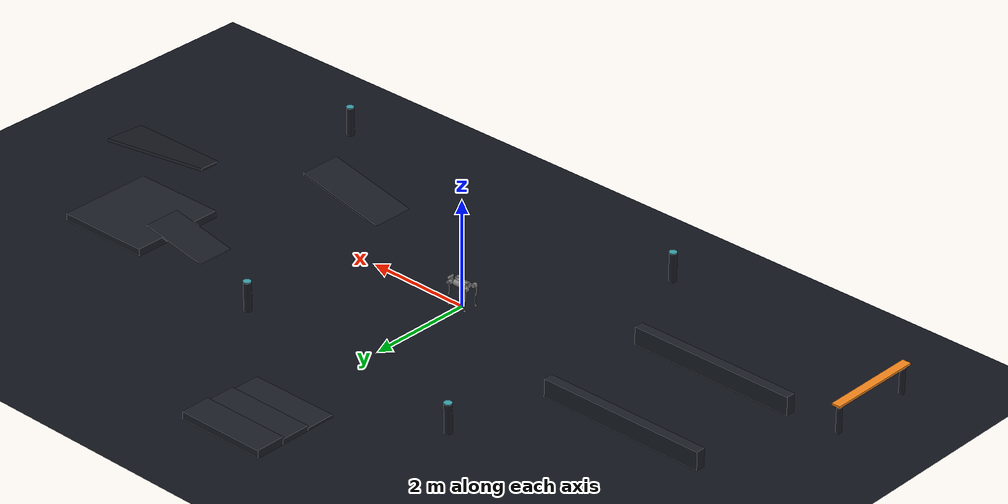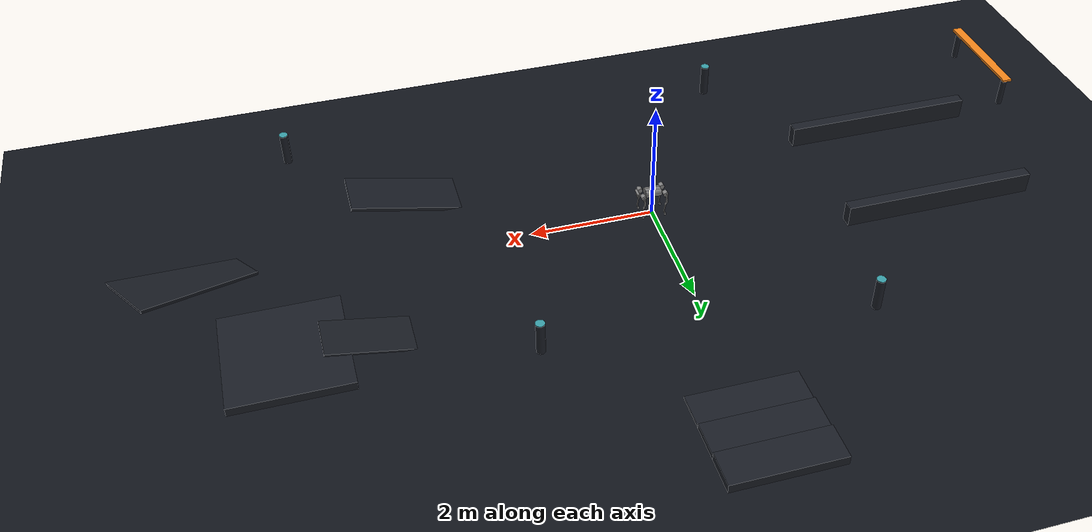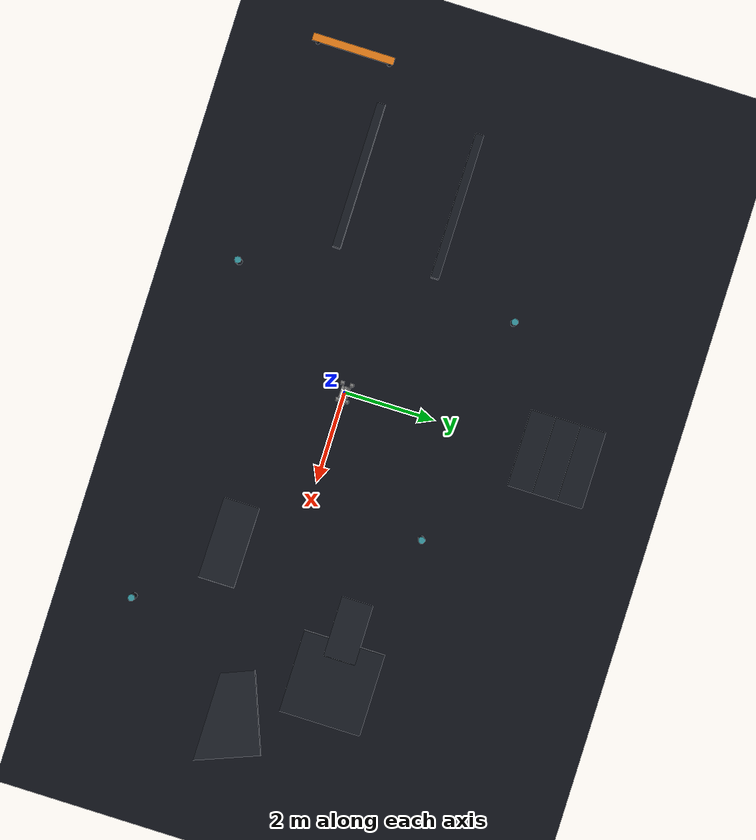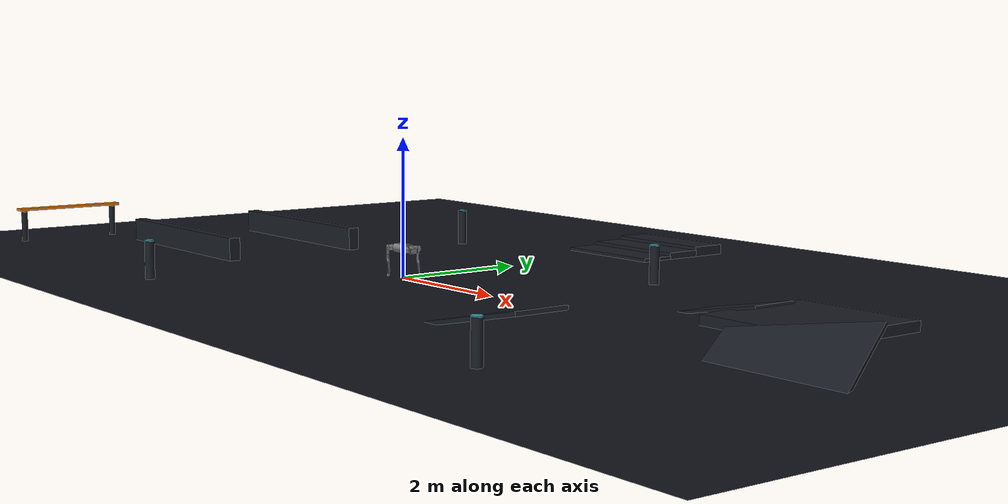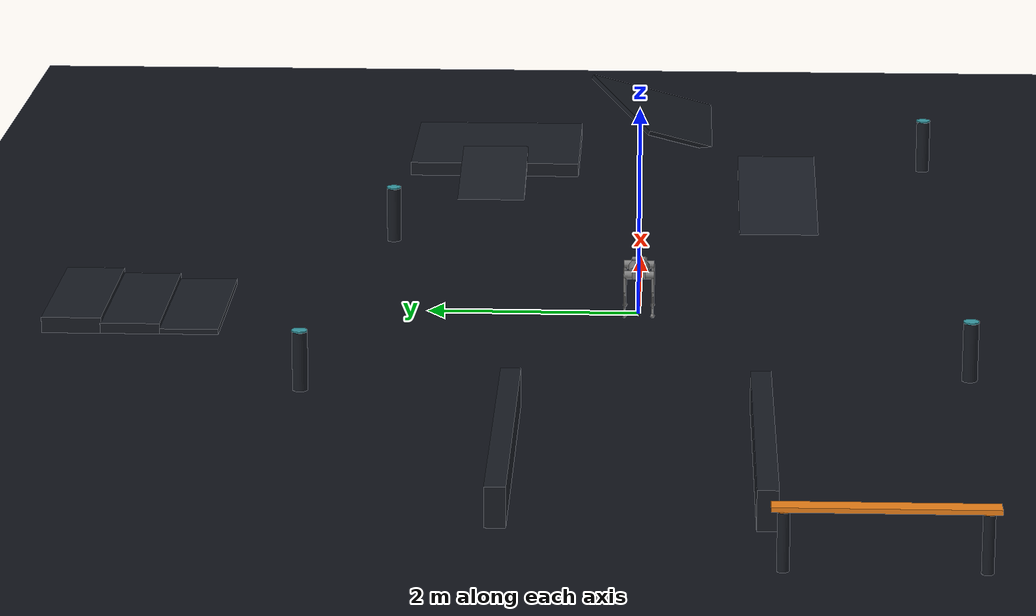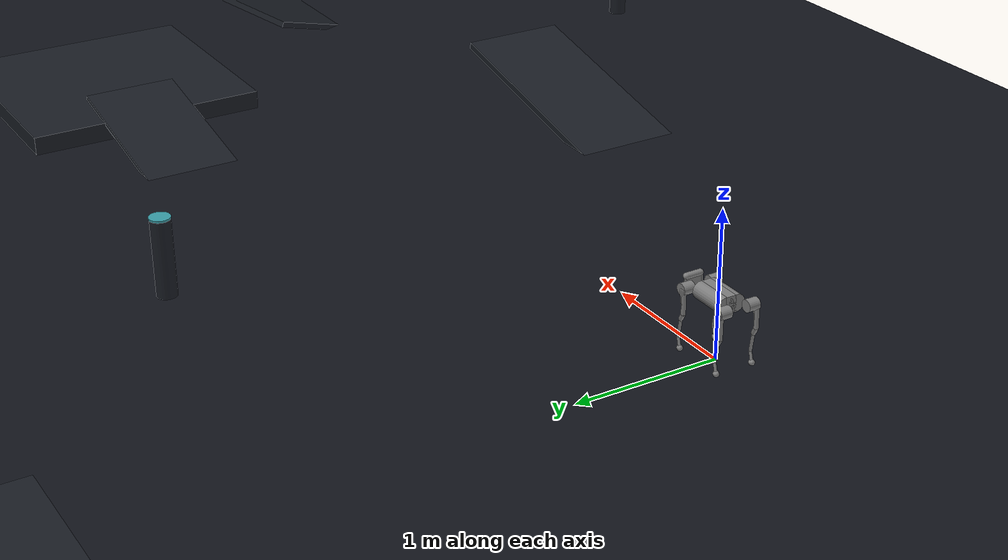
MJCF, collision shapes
<mujoco model="testfeld">
  <include file="a1.xml"/>
  <worldbody>
    <geom name="tf_floor" type="plane" size="0 0 0.05" rgba="0.07 0.08 0.11 1" condim="3" friction="1.0 0.005 0.0001"/>
    <body name="tf_ramp_a" pos="3.4 -1.4 0.055" euler="0 -0.21 0">
      <geom name="tf_ramp_a_g" type="box" size="1.30 0.40 0.030" rgba="0.10 0.115 0.145 1" condim="3" friction="0.9"/>
    </body>
    <body name="tf_plat" pos="6.0 1.6 0.070">
      <geom name="tf_plat_g" type="box" size="0.90 0.90 0.070" rgba="0.10 0.115 0.145 1" condim="3"/>
    </body>
    <body name="tf_plat_ramp" pos="4.55 1.6 0.035" euler="0 -0.19 0">
      <geom name="tf_plat_ramp_g" type="box" size="0.95 0.35 0.018" rgba="0.10 0.115 0.145 1" condim="3" friction="0.9"/>
    </body>
    <body name="tf_step0" pos="0 4.2 0.025">
      <geom name="tf_step0_g" type="box" size="0.85 0.28 0.025" rgba="0.10 0.115 0.145 1" condim="3"/>
    </body>
    <body name="tf_step1" pos="0 4.75 0.050">
      <geom name="tf_step1_g" type="box" size="0.85 0.28 0.050" rgba="0.10 0.115 0.145 1" condim="3"/>
    </body>
    <body name="tf_step2" pos="0 5.300000000000001 0.075">
      <geom name="tf_step2_g" type="box" size="0.85 0.28 0.075" rgba="0.10 0.115 0.145 1" condim="3"/>
    </body>
    <body name="tf_wall_l" pos="-4.5 -1.1 0.175">
      <geom name="tf_wall_l_g" type="box" size="1.6 0.09 0.175" rgba="0.10 0.115 0.145 1" condim="3"/>
    </body>
    <body name="tf_wall_r" pos="-4.5 1.1 0.175">
      <geom name="tf_wall_r_g" type="box" size="1.6 0.09 0.175" rgba="0.10 0.115 0.145 1" condim="3"/>
    </body>
    <body name="tf_gate_l" pos="-7 -2.8 0.250">
      <geom name="tf_gate_l_g" type="cylinder" size="0.050 0.250" rgba="0.10 0.115 0.145 1" condim="3"/>
      <geom name="tf_gate_l_top" type="cylinder" size="0.052 0.010" pos="0 0 0.250" rgba="0.95 0.52 0.10 1" condim="3"/>
    </body>
    <body name="tf_gate_r" pos="-7 -1.2 0.250">
      <geom name="tf_gate_r_g" type="cylinder" size="0.050 0.250" rgba="0.10 0.115 0.145 1" condim="3"/>
      <geom name="tf_gate_r_top" type="cylinder" size="0.052 0.010" pos="0 0 0.250" rgba="0.95 0.52 0.10 1" condim="3"/>
    </body>
    <body name="tf_gate_top" pos="-7 -2 0.530">
      <geom name="tf_gate_top_g" type="box" size="0.08 0.9 0.020" rgba="0.95 0.52 0.10 1" condim="3"/>
    </body>
    <body name="tf_pil0" pos="2.5 2.5 0.275">
      <geom name="tf_pil0_g" type="cylinder" size="0.070 0.275" rgba="0.10 0.115 0.145 1" condim="3"/>
      <geom name="tf_pil0_top" type="cylinder" size="0.072 0.007" pos="0 0 0.275" rgba="0.22 0.62 0.66 1" condim="3"/>
    </body>
    <body name="tf_pil1" pos="-2.5 3.0 0.275">
      <geom name="tf_pil1_g" type="cylinder" size="0.070 0.275" rgba="0.10 0.115 0.145 1" condim="3"/>
      <geom name="tf_pil1_top" type="cylinder" size="0.072 0.007" pos="0 0 0.275" rgba="0.22 0.62 0.66 1" condim="3"/>
    </body>
    <body name="tf_pil2" pos="-2.0 -3.0 0.275">
      <geom name="tf_pil2_g" type="cylinder" size="0.070 0.275" rgba="0.10 0.115 0.145 1" condim="3"/>
      <geom name="tf_pil2_top" type="cylinder" size="0.072 0.007" pos="0 0 0.275" rgba="0.22 0.62 0.66 1" condim="3"/>
    </body>
    <body name="tf_pil3" pos="5.5 -3.0 0.275">
      <geom name="tf_pil3_g" type="cylinder" size="0.070 0.275" rgba="0.10 0.115 0.145 1" condim="3"/>
      <geom name="tf_pil3_top" type="cylinder" size="0.072 0.007" pos="0 0 0.275" rgba="0.22 0.62 0.66 1" condim="3"/>
    </body>
    <body name="tf_edge" pos="7.4 -0.5 0.045" euler="0.35 0 0.4">
      <geom name="tf_edge_g" type="box" size="0.90 0.90 0.025" rgba="0.10 0.115 0.145 1" condim="3" friction="0.9"/>
    </body>
  </worldbody>
</mujoco>

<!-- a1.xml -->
<mujoco model="a1">
  <compiler angle="radian" meshdir="assets" texturedir="assets" autolimits="true"/>

  <option cone="elliptic" impratio="100"/>

  <default>
    <default class="a1">
      <geom friction="0.6" margin="0.001"/>
      <joint axis="0 1 0" damping="2" armature="0.01" frictionloss="0.2"/>
      <position kp="100" forcerange="-33.5 33.5"/>
      <default class="abduction">
        <joint axis="1 0 0" damping="1" range="-0.802851 0.802851"/>
        <position ctrlrange="-0.802851 0.802851"/>
      </default>
      <default class="hip">
        <joint range="-1.0472 4.18879"/>
        <position ctrlrange="-1.0472 4.18879"/>
      </default>
      <default class="knee">
        <joint range="-2.69653 -0.916298"/>
        <position ctrlrange="-2.69653 -0.916298"/>
      </default>
      <default class="visual">
        <geom type="mesh" contype="0" conaffinity="0" group="2" material="dark"/>
      </default>
      <default class="collision">
        <geom group="3" type="capsule"/>
        <default class="hip_left">
          <geom size="0.04 0.04" quat="1 1 0 0" type="cylinder" pos="0 0.055 0"/>
        </default>
        <default class="hip_right">
          <geom size="0.04 0.04" quat="1 1 0 0" type="cylinder" pos="0 -0.055 0"/>
        </default>
        <default class="thigh1">
          <geom size="0.015" fromto="-0.02 0 0 -0.02 0 -0.16"/>
        </default>
        <default class="thigh2">
          <geom size="0.015" fromto="0 0 0 -0.02 0 -0.1"/>
        </default>
        <default class="thigh3">
          <geom size="0.015" fromto="-0.02 0 -0.16 0 0 -0.2"/>
        </default>
        <default class="calf1">
          <geom size="0.01" fromto="0 0 0 0.02 0 -0.13"/>
        </default>
        <default class="calf2">
          <geom size="0.01" fromto="0.02 0 -0.13 0 0 -0.2"/>
        </default>
        <default class="foot">
          <geom type="sphere" size="0.02" pos="0 0 -0.2" priority="1" solimp="0.015 1 0.02" condim="6"
            friction="0.8 0.02 0.01"/>
        </default>
      </default>
    </default>
  </default>

  <asset>
    <material name="dark" specular="0" shininess="0.25" rgba="0.2 0.2 0.2 1"/>
    <texture type="2d" name="trunk_A1" file="trunk_A1.png"/>
    <material name="carbonfibre" texture="trunk_A1" specular="0" shininess="0.25"/>

    <mesh class="a1" file="calf.obj"/>
    <mesh class="a1" file="hip.obj"/>
    <mesh class="a1" file="thigh.obj"/>
    <mesh class="a1" file="thigh_mirror.obj"/>
    <mesh class="a1" file="trunk.obj"/>
  </asset>

  <worldbody>
    <light name="spotlight" mode="targetbodycom" target="trunk" pos="0 -1 2"/>
    <body name="trunk" pos="0 0 0.43" childclass="a1">
      <site name="imu" pos="0 0 0.02" size="0.01"/>
      <freejoint/>
      <inertial mass="4.713" pos="0 0.0041 -0.0005"
        fullinertia="0.0158533 0.0377999 0.0456542 -3.66e-05 -6.11e-05 -2.75e-05"/>
      <geom class="visual" mesh="trunk" material="carbonfibre"/>
      <geom class="collision" size="0.125 0.04 0.057" type="box"/>
      <geom class="collision" quat="1 0 1 0" pos="0 -0.04 0" size="0.058 0.125" type="cylinder"/>
      <geom class="collision" quat="1 0 1 0" pos="0 +0.04 0" size="0.058 0.125" type="cylinder"/>
      <geom class="collision" pos="0.25 0 0" size="0.005 0.06 0.05" type="box"/>
      <geom class="collision" pos="0.25 0.06 -0.01" size="0.009 0.035"/>
      <geom class="collision" pos="0.25 -0.06 -0.01" size="0.009 0.035"/>
      <geom class="collision" pos="0.25 0 -0.05" size="0.005 0.06" quat="1 1 0 0"/>
      <geom class="collision" pos="0.255 0 0.0355" size="0.021 0.052" quat="1 1 0 0"/>
      <body name="FR_hip" pos="0.183 -0.047 0">
        <inertial mass="0.696" pos="-0.003311 -0.000635 3.1e-05" quat="0.507528 0.506268 0.491507 0.494499"
          diaginertia="0.000807752 0.00055293 0.000468983"/>
        <joint class="abduction" name="FR_hip_joint"/>
        <geom class="visual" mesh="hip" quat="0 1 0 0"/>
        <geom class="hip_right"/>
        <body name="FR_thigh" pos="0 -0.08505 0">
          <inertial mass="1.013" pos="-0.003237 0.022327 -0.027326" quat="0.999125 -0.00256393 -0.0409531 -0.00806091"
            diaginertia="0.00555739 0.00513936 0.00133944"/>
          <joint class="hip" name="FR_thigh_joint"/>
          <geom class="visual" mesh="thigh_mirror"/>
          <geom class="thigh1"/>
          <geom class="thigh2"/>
          <geom class="thigh3"/>
          <body name="FR_calf" pos="0 0 -0.2">
            <inertial mass="0.226" pos="0.00472659 0 -0.131975" quat="0.706886 0.017653 0.017653 0.706886"
              diaginertia="0.00340344 0.00339393 3.54834e-05"/>
            <joint class="knee" name="FR_calf_joint"/>
            <geom class="visual" mesh="calf"/>
            <geom class="calf1"/>
            <geom class="calf2"/>
            <geom class="foot"/>
          </body>
        </body>
      </body>
      <body name="FL_hip" pos="0.183 0.047 0">
        <inertial mass="0.696" pos="-0.003311 0.000635 3.1e-05" quat="0.494499 0.491507 0.506268 0.507528"
          diaginertia="0.000807752 0.00055293 0.000468983"/>
        <joint class="abduction" name="FL_hip_joint"/>
        <geom class="visual" mesh="hip"/>
        <geom class="hip_left"/>
        <geom class="collision" size="0.04 0.04" pos="0 0.055 0" quat="1 1 0 0" type="cylinder"/>
        <body name="FL_thigh" pos="0 0.08505 0">
          <inertial mass="1.013" pos="-0.003237 -0.022327 -0.027326" quat="0.999125 0.00256393 -0.0409531 0.00806091"
            diaginertia="0.00555739 0.00513936 0.00133944"/>
          <joint class="hip" name="FL_thigh_joint"/>
          <geom class="visual" mesh="thigh"/>
          <geom class="thigh1"/>
          <geom class="thigh2"/>
          <geom class="thigh3"/>
          <body name="FL_calf" pos="0 0 -0.2">
            <inertial mass="0.226" pos="0.00472659 0 -0.131975" quat="0.706886 0.017653 0.017653 0.706886"
              diaginertia="0.00340344 0.00339393 3.54834e-05"/>
            <joint class="knee" name="FL_calf_joint"/>
            <geom class="visual" mesh="calf"/>
            <geom class="calf1"/>
            <geom class="calf2"/>
            <geom class="foot"/>
          </body>
        </body>
      </body>
      <body name="RR_hip" pos="-0.183 -0.047 0">
        <inertial mass="0.696" pos="0.003311 -0.000635 3.1e-05" quat="0.491507 0.494499 0.507528 0.506268"
          diaginertia="0.000807752 0.00055293 0.000468983"/>
        <joint class="abduction" name="RR_hip_joint"/>
        <geom class="visual" quat="0 0 0 -1" mesh="hip"/>
        <geom class="hip_right"/>
        <body name="RR_thigh" pos="0 -0.08505 0">
          <inertial mass="1.013" pos="-0.003237 0.022327 -0.027326" quat="0.999125 -0.00256393 -0.0409531 -0.00806091"
            diaginertia="0.00555739 0.00513936 0.00133944"/>
          <joint class="hip" name="RR_thigh_joint"/>
          <geom class="visual" mesh="thigh_mirror"/>
          <geom class="thigh1"/>
          <geom class="thigh2"/>
          <geom class="thigh3"/>
          <body name="RR_calf" pos="0 0 -0.2">
            <inertial mass="0.226" pos="0.00472659 0 -0.131975" quat="0.706886 0.017653 0.017653 0.706886"
              diaginertia="0.00340344 0.00339393 3.54834e-05"/>
            <joint class="knee" name="RR_calf_joint"/>
            <geom class="visual" mesh="calf"/>
            <geom class="calf1"/>
            <geom class="calf2"/>
            <geom class="foot"/>
          </body>
        </body>
      </body>
      <body name="RL_hip" pos="-0.183 0.047 0">
        <inertial mass="0.696" pos="0.003311 0.000635 3.1e-05" quat="0.506268 0.507528 0.494499 0.491507"
          diaginertia="0.000807752 0.00055293 0.000468983"/>
        <joint class="abduction" name="RL_hip_joint"/>
        <geom class="visual" quat="0 0 1 0" mesh="hip"/>
        <geom class="hip_left"/>
        <body name="RL_thigh" pos="0 0.08505 0">
          <inertial mass="1.013" pos="-0.003237 -0.022327 -0.027326" quat="0.999125 0.00256393 -0.0409531 0.00806091"
            diaginertia="0.00555739 0.00513936 0.00133944"/>
          <joint class="hip" name="RL_thigh_joint"/>
          <geom class="visual" mesh="thigh"/>
          <geom class="thigh1"/>
          <geom class="thigh2"/>
          <geom class="thigh3"/>
          <body name="RL_calf" pos="0 0 -0.2">
            <inertial mass="0.226" pos="0.00472659 0 -0.131975" quat="0.706886 0.017653 0.017653 0.706886"
              diaginertia="0.00340344 0.00339393 3.54834e-05"/>
            <joint class="knee" name="RL_calf_joint"/>
            <geom class="visual" mesh="calf"/>
            <geom class="calf1"/>
            <geom class="calf2"/>
            <geom class="foot"/>
          </body>
        </body>
      </body>
    </body>
  </worldbody>

  <actuator>
    <position class="abduction" name="FR_hip" joint="FR_hip_joint"/>
    <position class="hip" name="FR_thigh" joint="FR_thigh_joint"/>
    <position class="knee" name="FR_calf" joint="FR_calf_joint"/>
    <position class="abduction" name="FL_hip" joint="FL_hip_joint"/>
    <position class="hip" name="FL_thigh" joint="FL_thigh_joint"/>
    <position class="knee" name="FL_calf" joint="FL_calf_joint"/>
    <position class="abduction" name="RR_hip" joint="RR_hip_joint"/>
    <position class="hip" name="RR_thigh" joint="RR_thigh_joint"/>
    <position class="knee" name="RR_calf" joint="RR_calf_joint"/>
    <position class="abduction" name="RL_hip" joint="RL_hip_joint"/>
    <position class="hip" name="RL_thigh" joint="RL_thigh_joint"/>
    <position class="knee" name="RL_calf" joint="RL_calf_joint"/>
  </actuator>

  <keyframe>
    <key name="home" qpos="0 0 0.27 1 0 0 0 0 0.9 -1.8 0 0.9 -1.8 0 0.9 -1.8 0 0.9 -1.8"
      ctrl="0 0.9 -1.8 0 0.9 -1.8 0 0.9 -1.8 0 0.9 -1.8"/>
  </keyframe>
  <sensor>
    <gyro name="gyro" site="imu"/>
    <accelerometer name="accel" site="imu"/>
  </sensor>
</mujoco>
